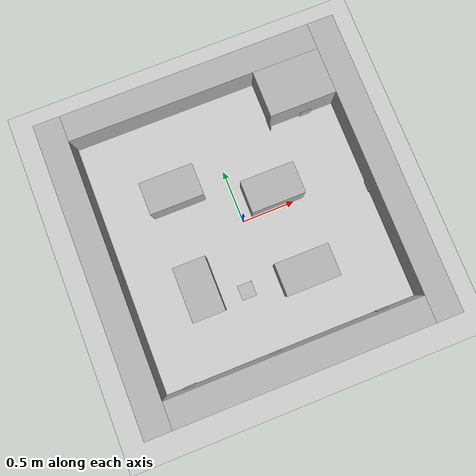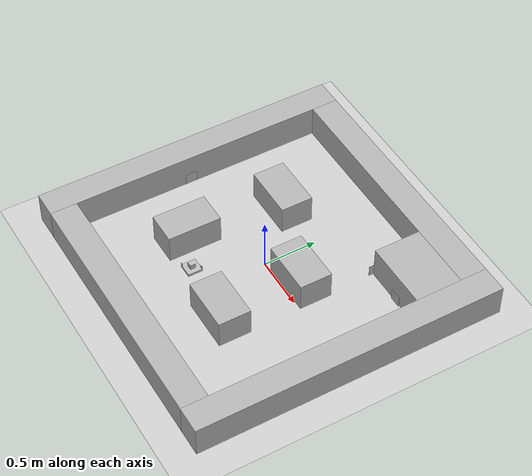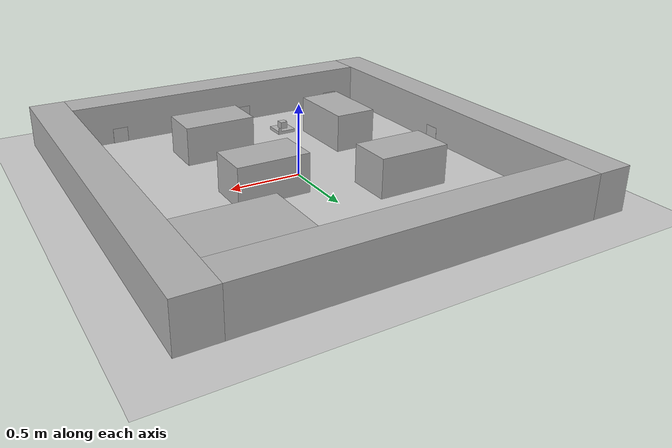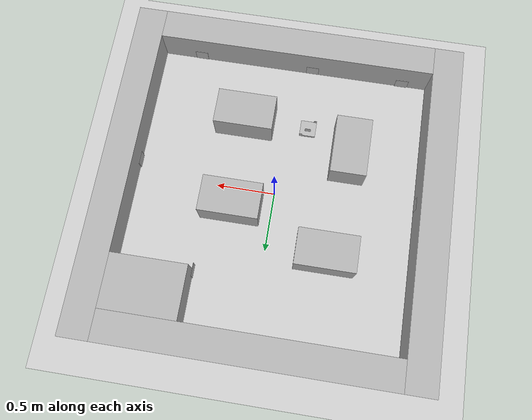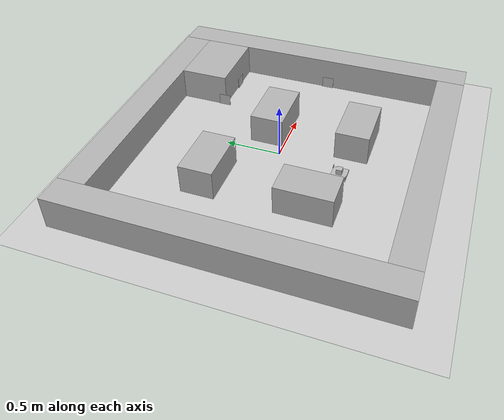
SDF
<sdf version="1.10">
 <world name="empty">
  <physics name="1ms" type="ignored">
   <max_step_size>0.001</max_step_size>
   <real_time_factor>1</real_time_factor>
   <real_time_update_rate>1000</real_time_update_rate>
  </physics>
  <plugin name="gz::sim::systems::Physics" filename="gz-sim-physics-system"/>
  <plugin name="gz::sim::systems::UserCommands" filename="gz-sim-user-commands-system"/>
  <plugin name="gz::sim::systems::SceneBroadcaster" filename="gz-sim-scene-broadcaster-system"/>
  <plugin name="gz::sim::systems::Contact" filename="gz-sim-contact-system"/>
  <plugin name="gz::sim::systems::ParticleEmitter" filename="gz-sim-particle-emitter-system"/>
  <gravity>0 0 -9.8000000000000007</gravity>
  <magnetic_field>5.5644999999999998e-06 2.2875799999999999e-05 -4.2388400000000002e-05</magnetic_field>
  <atmosphere type="adiabatic"/>
  <scene>
   <ambient>0.400000006 0.400000006 0.400000006 1</ambient>
   <background>0.699999988 0.699999988 0.699999988 1</background>
   <shadows>true</shadows>
  </scene>
  <model name="ground_plane">
   <static>true</static>
   <link name="link">
    <collision name="collision">
     <geometry><plane><normal>0 0 1</normal><size>100 100</size></plane></geometry>
    </collision>
    <visual name="visual">
     <geometry><plane><normal>0 0 1</normal><size>100 100</size></plane></geometry>
     <material>
      <ambient>0.800000012 0.800000012 0.800000012 1</ambient>
      <diffuse>0.800000012 0.800000012 0.800000012 1</diffuse>
      <specular>0.800000012 0.800000012 0.800000012 1</specular>
     </material>
    </visual>
    <inertial>
     <mass>1</mass>
     <inertia><ixx>1</ixx><ixy>0</ixy><ixz>0</ixz><iyy>1</iyy><iyz>0</iyz><izz>1</izz></inertia>
    </inertial>
   </link>
   <pose>4 0 0 0 0 0</pose>
  </model>
  <include>
   <uri>file:///root/octavo_ws/src/TE3003B/puzzlebot_sim/aphelion/models/Aruco13</uri>
   <name>Aruco13</name>
   <pose>0.55500000000000005 0.76100000000000001 0.055 0 0 3.1400000000000001</pose>
  </include>
  <include>
   <uri>file:///root/octavo_ws/src/TE3003B/puzzlebot_sim/aphelion/models/Aruco11</uri>
   <name>Aruco11</name>
   <pose>-1.1899999999999999 -0.074999999999999997 0.055 0 0 0</pose>
  </include>
  <model name="box">
   <pose>1.3149999999999999 0 0.14999999999999999 0 0 0</pose>
   <link name="box_link">
    <inertial>
     <inertia><ixx>0.16666</ixx><ixy>0</ixy><ixz>0</ixz><iyy>0.16666</iyy><iyz>0</iyz><izz>0.16666</izz></inertia>
     <mass>1</mass>
    </inertial>
    <collision name="box_collision">
     <geometry><box><size>0.25 2.8799999999999999 0.29999999999999999</size></box></geometry>
    </collision>
    <visual name="box_visual">
     <geometry><box><size>0.25 2.8799999999999999 0.29999999999999999</size></box></geometry>
     <material>
      <ambient>0.300000012 0.300000012 0.300000012 1</ambient>
      <diffuse>0.699999988 0.699999988 0.699999988 1</diffuse>
      <specular>1 1 1 1</specular>
     </material>
    </visual>
   </link>
   <static>false</static>
  </model>
  <model name="box_0">
   <pose>0 1.3149999999999999 0.14999999999999999 0 0 0</pose>
   <link name="box_link">
    <inertial>
     <inertia><ixx>0.16666</ixx><ixy>0</ixy><ixz>0</ixz><iyy>0.16666</iyy><iyz>0</iyz><izz>0.16666</izz></inertia>
     <mass>1</mass>
    </inertial>
    <collision name="box_collision">
     <geometry><box><size>2.3799999999999999 0.25 0.29999999999999999</size></box></geometry>
    </collision>
    <visual name="box_visual">
     <geometry><box><size>2.3799999999999999 0.25 0.29999999999999999</size></box></geometry>
     <material>
      <ambient>0.300000012 0.300000012 0.300000012 1</ambient>
      <diffuse>0.699999988 0.699999988 0.699999988 1</diffuse>
      <specular>1 1 1 1</specular>
     </material>
    </visual>
   </link>
   <static>false</static>
  </model>
  <model name="box_1">
   <pose>0 -1.3149999999999999 0.14999999999999999 0 0 0</pose>
   <link name="box_link">
    <inertial>
     <inertia><ixx>0.16666</ixx><ixy>0</ixy><ixz>0</ixz><iyy>0.16666</iyy><iyz>0</iyz><izz>0.16666</izz></inertia>
     <mass>1</mass>
    </inertial>
    <collision name="box_collision">
     <geometry><box><size>2.3799999999999999 0.25 0.29999999999999999</size></box></geometry>
    </collision>
    <visual name="box_visual">
     <geometry><box><size>2.3799999999999999 0.25 0.29999999999999999</size></box></geometry>
     <material>
      <ambient>0.300000012 0.300000012 0.300000012 1</ambient>
      <diffuse>0.699999988 0.699999988 0.699999988 1</diffuse>
      <specular>1 1 1 1</specular>
     </material>
    </visual>
   </link>
   <static>false</static>
  </model>
  <model name="box_2">
   <pose>-1.3149999999999999 0 0.14999999999999999 0 0 0</pose>
   <link name="box_link">
    <inertial>
     <inertia><ixx>0.16666</ixx><ixy>0</ixy><ixz>0</ixz><iyy>0.16666</iyy><iyz>0</iyz><izz>0.16666</izz></inertia>
     <mass>1</mass>
    </inertial>
    <collision name="box_collision">
     <geometry><box><size>0.25 2.8799999999999999 0.29999999999999999</size></box></geometry>
    </collision>
    <visual name="box_visual">
     <geometry><box><size>0.25 2.8799999999999999 0.29999999999999999</size></box></geometry>
     <material>
      <ambient>0.300000012 0.300000012 0.300000012 1</ambient>
      <diffuse>0.699999988 0.699999988 0.699999988 1</diffuse>
      <specular>1 1 1 1</specular>
     </material>
    </visual>
   </link>
   <static>false</static>
  </model>
  <model name="col">
   <pose>0.875 0.96999999999999997 0.14999999999999999 0 0 0</pose>
   <link name="col_link">
    <inertial>
     <inertia><ixx>0.16666</ixx><ixy>0</ixy><ixz>0</ixz><iyy>0.16666</iyy><iyz>0</iyz><izz>0.16666</izz></inertia>
     <mass>1</mass>
    </inertial>
    <collision name="col_collision">
     <geometry><box><size>0.63 0.44 0.29999999999999999</size></box></geometry>
    </collision>
    <visual name="col_visual">
     <geometry><box><size>0.63 0.44 0.29999999999999999</size></box></geometry>
     <material>
      <ambient>0.300000012 0.300000012 0.300000012 1</ambient>
      <diffuse>0.699999988 0.699999988 0.699999988 1</diffuse>
      <specular>1 1 1 1</specular>
     </material>
    </visual>
   </link>
   <static>false</static>
  </model>
  <model name="obs_0">
   <pose>0.34999999999999998 -0.625 0.14999999999999999 0 0 0</pose>
   <link name="obs_link">
    <inertial>
     <inertia><ixx>0.16666</ixx><ixy>0</ixy><ixz>0</ixz><iyy>0.16666</iyy><iyz>0</iyz><izz>0.16666</izz></inertia>
     <mass>1</mass>
    </inertial>
    <collision name="obs_collision">
     <geometry><box><size>0.5 0.30000000000000002 0.26999999999999999</size></box></geometry>
    </collision>
    <visual name="obs_visual">
     <geometry><box><size>0.5 0.30000000000000002 0.26999999999999999</size></box></geometry>
     <material>
      <ambient>0.300000012 0.300000012 0.300000012 1</ambient>
      <diffuse>0.699999988 0.699999988 0.699999988 1</diffuse>
      <specular>1 1 1 1</specular>
     </material>
    </visual>
   </link>
   <static>false</static>
  </model>
  <model name="obs_1">
   <pose>-0.57999999999999996 -0.44 0.14999999999999999 0 0 0</pose>
   <link name="obs_link">
    <inertial>
     <inertia><ixx>0.16666</ixx><ixy>0</ixy><ixz>0</ixz><iyy>0.16666</iyy><iyz>0</iyz><izz>0.16666</izz></inertia>
     <mass>1</mass>
    </inertial>
    <collision name="obs_collision">
     <geometry><box><size>0.30000000000000002 0.5 0.26999999999999999</size></box></geometry>
    </collision>
    <visual name="obs_visual">
     <geometry><box><size>0.30000000000000002 0.5 0.26999999999999999</size></box></geometry>
     <material>
      <ambient>0.300000012 0.300000012 0.300000012 1</ambient>
      <diffuse>0.699999988 0.699999988 0.699999988 1</diffuse>
      <specular>1 1 1 1</specular>
     </material>
    </visual>
   </link>
   <static>false</static>
  </model>
  <model name="obs_2">
   <pose>-0.495 0.46500000000000002 0.14999999999999999 0 0 0</pose>
   <link name="obs_link">
    <inertial>
     <inertia><ixx>0.16666</ixx><ixy>0</ixy><ixz>0</ixz><iyy>0.16666</iyy><iyz>0</iyz><izz>0.16666</izz></inertia>
     <mass>1</mass>
    </inertial>
    <collision name="obs_collision">
     <geometry><box><size>0.5 0.30000000000000002 0.26999999999999999</size></box></geometry>
    </collision>
    <visual name="obs_visual">
     <geometry><box><size>0.5 0.30000000000000002 0.26999999999999999</size></box></geometry>
     <material>
      <ambient>0.300000012 0.300000012 0.300000012 1</ambient>
      <diffuse>0.699999988 0.699999988 0.699999988 1</diffuse>
      <specular>1 1 1 1</specular>
     </material>
    </visual>
   </link>
   <static>false</static>
  </model>
  <model name="obs_3">
   <pose>0.34000000000000002 0.155 0.14999999999999999 0 0 0</pose>
   <link name="obs_link">
    <inertial>
     <inertia><ixx>0.16666</ixx><ixy>0</ixy><ixz>0</ixz><iyy>0.16666</iyy><iyz>0</iyz><izz>0.16666</izz></inertia>
     <mass>1</mass>
    </inertial>
    <collision name="obs_collision">
     <geometry><box><size>0.5 0.30000000000000002 0.26999999999999999</size></box></geometry>
    </collision>
    <visual name="obs_visual">
     <geometry><box><size>0.5 0.30000000000000002 0.26999999999999999</size></box></geometry>
     <material>
      <ambient>0.300000012 0.300000012 0.300000012 1</ambient>
      <diffuse>0.699999988 0.699999988 0.699999988 1</diffuse>
      <specular>1 1 1 1</specular>
     </material>
    </visual>
   </link>
   <static>false</static>
  </model>
  <include>
   <uri>file:///root/octavo_ws/src/TE3003B/puzzlebot_sim/aphelion/models/Aruco10</uri>
   <name>Aruco10</name>
   <pose>0.85679456401249643 -1.1892763806686828 0.055 0 0 1.57</pose>
  </include>
  <include>
   <uri>file:///root/octavo_ws/src/TE3003B/puzzlebot_sim/aphelion/models/Aruco8</uri>
   <name>Aruco8</name>
   <pose>0.91363888120453185 0.73996747879192393 0.055 0 0 -1.57</pose>
  </include>
  <include>
   <uri>file:///root/octavo_ws/src/TE3003B/puzzlebot_sim/aphelion/models/Aruco3</uri>
   <name>Aruco3</name>
   <pose>-0.96919292934399359 -1.1866535968574532 0.055 0 0 1.57</pose>
  </include>
  <include>
   <uri>file:///root/octavo_ws/src/TE3003B/puzzlebot_sim/aphelion/models/Aruco12</uri>
   <name>Aruco12</name>
   <pose>1.1829422062239214 -0.11577044718381779 0.055 0 0 3.14</pose>
  </include>
  <include>
   <uri>file:///root/octavo_ws/src/TE3003B/puzzlebot_sim/aphelion/models/Aruco2</uri>
   <name>Aruco2</name>
   <pose>-0.16016609744464755 -1.1910165662134333 0.055 0 0 1.57</pose>
  </include>
  <include>
   <uri>file:///root/octavo_ws/src/TE3003B/puzzlebot_sim/aphelion/models/P80_Pallet</uri>
   <name>Pallet</name>
   <pose>-0.2 -0.6 0.1 0 0 0</pose>
  </include>
  <light name="sun" type="directional">
   <pose>0 0 10 0 0 0</pose>
   <intensity>1</intensity>
   <direction>-0.5 0.10000000000000001 -0.90000000000000002</direction>
   <diffuse>0.800000012 0.800000012 0.800000012 1</diffuse>
   <specular>0.200000003 0.200000003 0.200000003 1</specular>
   <attenuation>
    <range>1000</range>
    <linear>0.0099999997764825821</linear>
    <constant>0.89999997615814209</constant>
    <quadratic>0.0010000000474974513</quadratic>
   </attenuation>
   <spot><inner_angle>0</inner_angle><outer_angle>0</outer_angle><falloff>0</falloff></spot>
  </light>
 </world>
</sdf>

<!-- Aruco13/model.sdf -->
<sdf version="1.6">
  <model name="Aruco13">
    <pose>0 0 0 0 0 0</pose>
    <static>true</static>
    <link name="link">
      <visual name="visual">
        <geometry>
          <mesh>
            <uri>model://Aruco13/meshes/aruco4x4_13.dae</uri>
            <scale>1 1 1</scale>
          </mesh>
        </geometry>
      </visual>
    </link>
  </model>
</sdf>

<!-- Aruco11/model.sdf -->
<sdf version="1.6">
  <model name="Aruco11">
    <pose>0 0 0 0 0 0</pose>
    <static>true</static>
    <link name="link">
      <visual name="visual">
        <geometry>
          <mesh>
            <uri>model://Aruco11/meshes/aruco4x4_11.dae</uri>
            <scale>1 1 1</scale>
          </mesh>
        </geometry>
      </visual>
    </link>
  </model>
</sdf>

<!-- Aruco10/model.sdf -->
<sdf version="1.6">
  <model name="Aruco10">
    <pose>0 0 0 0 0 0</pose>
    <static>true</static>
    <link name="link">
      <visual name="visual">
        <geometry>
          <mesh>
            <uri>model://Aruco10/meshes/aruco4x4_10.dae</uri>
            <scale>1 1 1</scale>
          </mesh>
        </geometry>
      </visual>
    </link>
  </model>
</sdf>

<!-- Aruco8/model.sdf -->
<sdf version="1.6">
  <model name="Aruco8">
    <pose>0 0 0 0 0 0</pose>
    <static>true</static>
    <link name="link">
      <visual name="visual">
        <geometry>
          <mesh>
            <uri>model://Aruco8/meshes/aruco4x4_8.dae</uri>
            <scale>1 1 1</scale>
          </mesh>
        </geometry>
      </visual>
    </link>
  </model>
</sdf>

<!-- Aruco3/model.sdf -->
<sdf version="1.6">
  <model name="Aruco3">
    <pose>0 0 0 0 0 0</pose>
    <static>true</static>
    <link name="link">
      <visual name="visual">
        <geometry>
          <mesh>
            <uri>model://Aruco3/meshes/aruco4x4_3.dae</uri>
            <scale>1 1 1</scale>
          </mesh>
        </geometry>
      </visual>
    </link>
  </model>
</sdf>

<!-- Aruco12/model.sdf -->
<sdf version="1.6">
  <model name="Aruco12">
    <pose>0 0 0 0 0 0</pose>
    <static>true</static>
    <link name="link">
      <visual name="visual">
        <geometry>
          <mesh>
            <uri>model://Aruco12/meshes/aruco4x4_12.dae</uri>
            <scale>1 1 1</scale>
          </mesh>
        </geometry>
      </visual>
    </link>
  </model>
</sdf>

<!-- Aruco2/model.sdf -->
<sdf version="1.6">
  <model name="Aruco2">
    <pose>0 0 0 0 0 0</pose>
    <static>true</static>
    <link name="link">
      <visual name="visual">
        <geometry>
          <mesh>
            <uri>model://Aruco2/meshes/aruco4x4_2.dae</uri>
            <scale>1 1 1</scale>
          </mesh>
        </geometry>
      </visual>
    </link>
  </model>
</sdf>

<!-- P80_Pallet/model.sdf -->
<sdf version="1.6">
  <model name="P80 Pallet">
    <pose>0 0 0 0 0 0</pose>
    <static>false</static>
    <link name="link">
      <visual name="visual">
        <geometry>
          <mesh>
            <uri>model://P80_Pallet/meshes/pallet.dae</uri>
            <scale>0.1 0.1 0.1</scale>
          </mesh>
        </geometry>
      </visual>
      <collision name="collision">
	<geometry>
	  <mesh>
	    <uri>model://P80_Pallet/meshes/pallet.dae</uri>
	    <scale>0.1 0.1 0.1</scale>
	  </mesh>
	</geometry>
      </collision>
    </link>
  </model>
</sdf>
